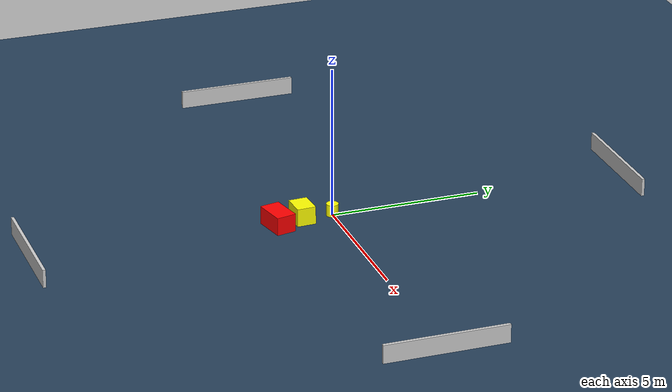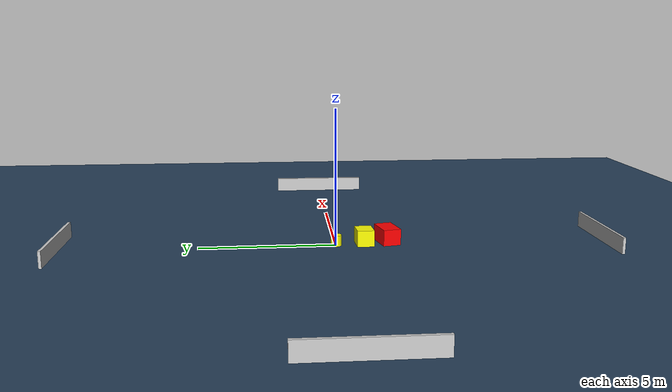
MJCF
<?xml version="1.0" ?>
<mujoco model="generated_environment">
  <option timestep="0.01" integrator="RK4" cone="elliptic"/>
  <default>
    <geom density="1"/>
  </default>
  <asset>
    <texture builtin="gradient" height="3072" name="skybox" rgb1="0.3 0.5 0.7" rgb2="0 0 0" type="skybox" width="512"/>
    <texture builtin="checker" height="300" name="groundplane" rgb1="0.2 0.3 0.4" rgb2="0.1 0.2 0.3" type="2d" width="300"/>
    <material name="groundplane" reflectance="0.2" texrepeat="5 5" texture="groundplane"/>
  </asset>
  <worldbody>
    <light dir="0 0 -1" directional="true" pos="0 0 1.5"/>
    <geom condim="3" friction="0.5 0.005 0.001" material="groundplane" name="floor" pos="0 0 0" size="0 0 0.05" type="plane"/>
    <body name="walls">
      <geom name="wall_1" condim="4" pos="-10.0 0.0 0.3" rgba="0.800000011920929 0.800000011920929 0.800000011920929 1.0" size="0.05 2.0 0.3" type="box"/>
      <geom name="wall_2" condim="4" pos="10.0 0.0 0.3" rgba="0.800000011920929 0.800000011920929 0.800000011920929 1.0" size="0.05 2.0 0.3" type="box"/>
      <geom name="wall_3" condim="4" pos="0.0 -10.0 0.3" rgba="0.800000011920929 0.800000011920929 0.800000011920929 1.0" size="2.0 0.05 0.3" type="box"/>
      <geom name="wall_4" condim="4" pos="0.0 10.0 0.3" rgba="0.800000011920929 0.800000011920929 0.800000011920929 1.0" size="2.0 0.05 0.3" type="box"/>
    </body>
    <body name="robot">
      <joint name="joint_x" type="slide" pos="0 0 0" axis="1 0 0"/>
      <joint name="joint_y" type="slide" pos="0 0 0" axis="0 1 0"/>
      <geom name="robot" type="cylinder" pos="0.0 0.0 0.2" size="0.2 0.2 0.0" mass="5.0" friction="1.0 0.005 0.0001" condim="4" rgba="1.0 1.0 0.0 1.0"/>
    </body>
    <body name="obstacle_1_movable">
      <geom name="obstacle_1_movable" condim="4" pos="0.08285632653743666 -1.0506178455980786 0.3" euler="0 0 183.0561677786694" friction="0.0 0.005 0.001" rgba="1.0 1.0 0.0 1.0" size="0.38949099527609665 0.3115592715126092 0.3" type="box" mass="0.1"/>
      <joint type="free"/>
    </body>
    <body name="obstacle_2_static">
      <geom name="obstacle_2_static" condim="4" pos="0.3006138627344337 -1.9347087697116725 0.3" euler="0 0 282.1436324212772" friction="0.0 0.005 0.001" rgba="1.0 0.0 0.0 1.0" size="0.331798343133765 0.5374494709162438 0.3" type="box"/>
    </body>
  </worldbody>
  <actuator>
    <motor name="actuator_x" joint="joint_x" gear="1" ctrlrange="-1 1"/>
    <motor name="actuator_y" joint="joint_y" gear="1" ctrlrange="-1 1"/>
  </actuator>
</mujoco>
